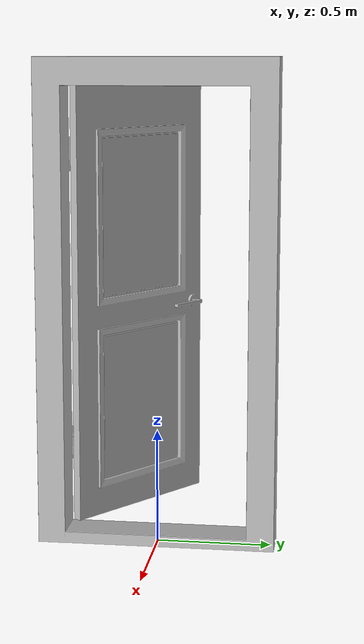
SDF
<?xml version='1.0'?>
<sdf version='1.4'>
  <model name='214'>
    <pose>0 0 0 0 0 0</pose>
    <static>true</static>
    <link name='link'>
      <collision name='collision'>
        <pose>0 0 0 0 0 0</pose>
        <geometry>
          <box>
            <size>0.829998 1.03985 2</size>
          </box>
        </geometry>
      </collision>
      <visual name='visual'>
        <pose>0 0 0 0 0 0</pose>
        <geometry>
          <mesh><uri>model://214/214.dae</uri></mesh>
        </geometry>
      </visual>
    </link>
  </model>
</sdf>
